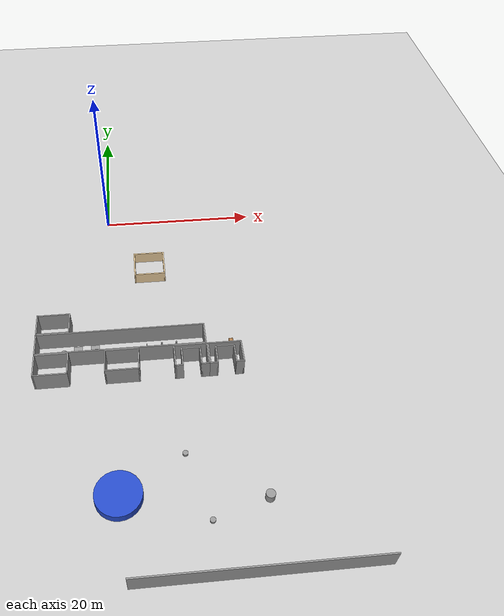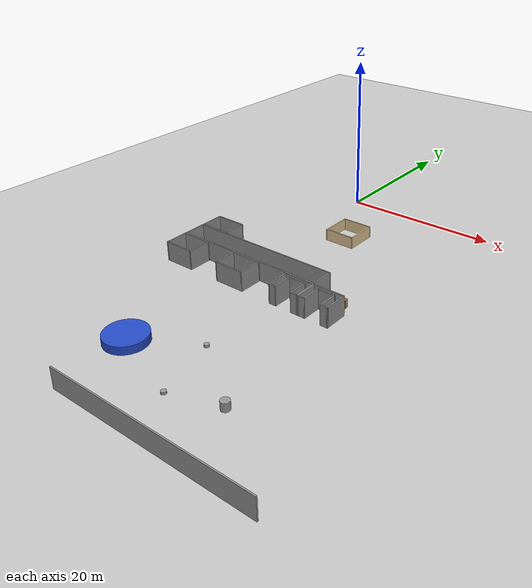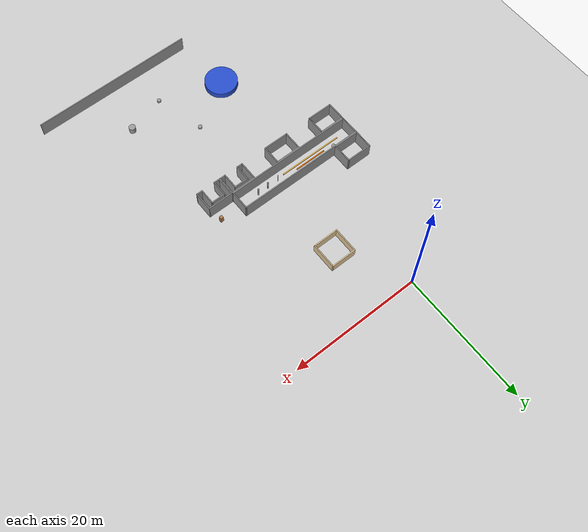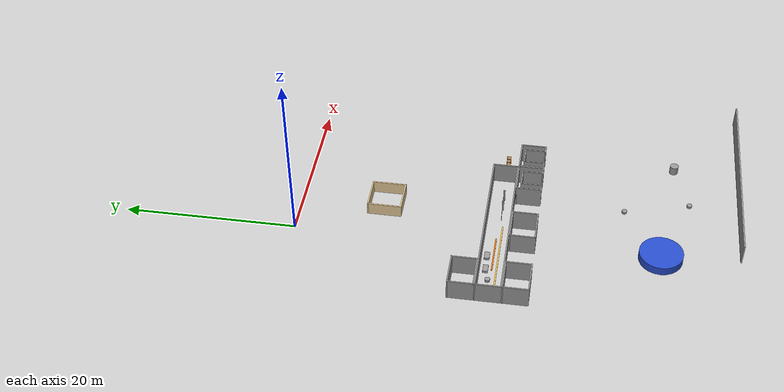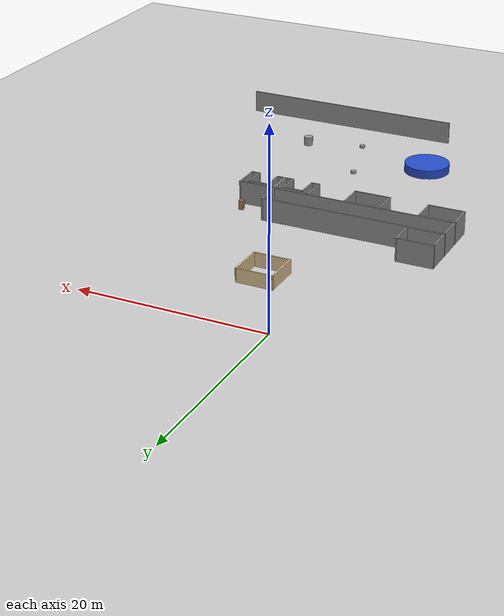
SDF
<sdf version="1.6">
 <world name="default">
  <model name="ground_plane">
   <static>1</static>
   <link name="link">
    <collision name="collision">
     <geometry><plane><normal>0 0 1</normal><size>105 105</size></plane></geometry>
     <surface>
      <contact><collide_bitmask>65535</collide_bitmask></contact>
      <friction><ode><mu>100</mu><mu2>50</mu2></ode></friction>
     </surface>
    </collision>
    <visual name="visual">
     <cast_shadows>0</cast_shadows>
     <geometry><plane><normal>0 0 1</normal><size>105 105</size></plane></geometry>
     <material>
      <script><uri>file://media/materials/scripts/gazebo.material</uri><name>Gazebo/Grey</name></script>
     </material>
    </visual>
   </link>
  </model>
  <model name="base3x20_2">
   <pose>1.5051 -23.232 0 0 -0 0</pose>
   <link name="Wall_16">
    <collision name="Wall_16_Collision">
     <geometry><box><size>3 0.15 2.5</size></box></geometry>
     <pose>0 0 1.25 0 -0 0</pose>
    </collision>
    <visual name="Wall_16_Visual">
     <pose>0 0 1.25 0 -0 0</pose>
     <geometry><box><size>3 0.15 2.5</size></box></geometry>
     <material>
      <script><uri>file://media/materials/scripts/gazebo.material</uri><name>Gazebo/Grey</name></script>
      <ambient>1 1 1 1</ambient>
     </material>
     <meta><layer>0</layer></meta>
    </visual>
    <pose>-9.925 -0 0 0 -0 -1.5708</pose>
   </link>
   <link name="Wall_17">
    <collision name="Wall_17_Collision">
     <geometry><box><size>20 0.15 2.5</size></box></geometry>
     <pose>0 0 1.25 0 -0 0</pose>
    </collision>
    <visual name="Wall_17_Visual">
     <pose>0 0 1.25 0 -0 0</pose>
     <geometry><box><size>20 0.15 2.5</size></box></geometry>
     <material>
      <script><uri>file://media/materials/scripts/gazebo.material</uri><name>Gazebo/Grey</name></script>
      <ambient>1 1 1 1</ambient>
     </material>
     <meta><layer>0</layer></meta>
    </visual>
    <pose>-0 -1.425 0 0 -0 0</pose>
   </link>
   <link name="Wall_18">
    <collision name="Wall_18_Collision">
     <geometry><box><size>3 0.15 2.5</size></box></geometry>
     <pose>0 0 1.25 0 -0 0</pose>
    </collision>
    <visual name="Wall_18_Visual">
     <pose>0 0 1.25 0 -0 0</pose>
     <geometry><box><size>3 0.15 2.5</size></box></geometry>
     <material>
      <script><uri>file://media/materials/scripts/gazebo.material</uri><name>Gazebo/Grey</name></script>
      <ambient>1 1 1 1</ambient>
     </material>
     <meta><layer>0</layer></meta>
    </visual>
    <pose>9.925 -0 0 0 -0 1.5708</pose>
   </link>
   <link name="Wall_19">
    <collision name="Wall_19_Collision">
     <geometry><box><size>20 0.15 2.5</size></box></geometry>
     <pose>0 0 1.25 0 -0 0</pose>
    </collision>
    <visual name="Wall_19_Visual">
     <pose>0 0 1.25 0 -0 0</pose>
     <geometry><box><size>20 0.15 2.5</size></box></geometry>
     <material>
      <script><uri>file://media/materials/scripts/gazebo.material</uri><name>Gazebo/Grey</name></script>
      <ambient>1 1 1 1</ambient>
     </material>
     <meta><layer>0</layer></meta>
    </visual>
    <pose>-0 1.425 0 0 -0 3.14159</pose>
   </link>
   <static>1</static>
  </model>
  <model name="unit_cylinder_2">
   <pose>15.9962 -43.1928 0.499981 0 -0 0</pose>
   <link name="link">
    <inertial>
     <mass>1</mass>
     <inertia><ixx>0.145833</ixx><ixy>0</ixy><ixz>0</ixz><iyy>0.145833</iyy><iyz>0</iyz><izz>0.125</izz></inertia>
    </inertial>
    <collision name="collision">
     <geometry><cylinder><radius>0.5</radius><length>1</length></cylinder></geometry>
    </collision>
    <visual name="visual">
     <geometry><cylinder><radius>0.5</radius><length>1</length></cylinder></geometry>
     <material>
      <script><name>Gazebo/Grey</name><uri>file://media/materials/scripts/gazebo.material</uri></script>
     </material>
    </visual>
   </link>
  </model>
  <model name="wall_25m_8">
   <pose>14.0268 -50.7126 0 0 -0 0</pose>
   <link name="Wall_28">
    <collision name="Wall_28_Collision">
     <geometry><box><size>25 0.15 2.5</size></box></geometry>
     <pose>0 0 1.25 0 -0 0</pose>
    </collision>
    <visual name="Wall_28_Visual">
     <pose>0 0 1.25 0 -0 0</pose>
     <geometry><box><size>25 0.15 2.5</size></box></geometry>
     <material>
      <script><uri>file://media/materials/scripts/gazebo.material</uri><name>Gazebo/Grey</name></script>
      <ambient>1 1 1 1</ambient>
     </material>
     <meta><layer>0</layer></meta>
    </visual>
   </link>
   <static>1</static>
  </model>
  <model name="bar10x0.15x0.15">
   <pose>-1.69484 -23.7489 0 0 -0 0</pose>
   <link name="Wall_5">
    <collision name="Wall_5_Collision">
     <geometry><box><size>10 0.15 0.15</size></box></geometry>
     <pose>0 0 0.075 0 -0 0</pose>
    </collision>
    <visual name="Wall_5_Visual">
     <pose>0 0 0.075 0 -0 0</pose>
     <geometry><box><size>10 0.15 0.15</size></box></geometry>
     <material>
      <script><uri>file://media/materials/scripts/gazebo.material</uri><name>Gazebo/Grey</name></script>
      <ambient>1 0.764706 0.305882 1</ambient>
     </material>
     <meta><layer>0</layer></meta>
    </visual>
   </link>
   <static>1</static>
  </model>
  <model name="bar5x0.15x0.15">
   <pose>-1.24356 -23.2103 0 0 -0 0</pose>
   <link name="Wall_12">
    <collision name="Wall_12_Collision">
     <geometry><box><size>5 0.15 0.15</size></box></geometry>
     <pose>0 0 0.075 0 -0 0</pose>
    </collision>
    <visual name="Wall_12_Visual">
     <pose>0 0 0.075 0 -0 0</pose>
     <geometry><box><size>5 0.15 0.15</size></box></geometry>
     <material>
      <script><uri>file://media/materials/scripts/gazebo.material</uri><name>Gazebo/Grey</name></script>
      <ambient>0.996078 0.47451 0.0196078 1</ambient>
     </material>
     <meta><layer>0</layer></meta>
    </visual>
   </link>
   <static>1</static>
  </model>
  <model name="cabinet">
   <static>1</static>
   <link name="cabinet_bottom_plate">
    <inertial>
     <pose>0 0 -1 0 -0 0</pose>
     <inertia><ixx>2.05</ixx><ixy>0</ixy><ixz>0</ixz><iyy>2.05</iyy><iyz>0</iyz><izz>2.05</izz></inertia>
     <mass>25</mass>
    </inertial>
    <collision name="cabinet_bottom_plate_geom">
     <pose>0 0 0.01 0 -0 0</pose>
     <geometry><box><size>0.45 0.45 0.02</size></box></geometry>
    </collision>
    <visual name="cabinet_bottom_plate_geom_visual">
     <pose>0 0 0.01 0 -0 0</pose>
     <geometry><box><size>0.45 0.45 0.02</size></box></geometry>
     <material>
      <script><uri>file://media/materials/scripts/gazebo.material</uri><name>Gazebo/Wood</name></script>
     </material>
    </visual>
    <collision name="cabinet_bottom_plate_geom_cabinet_back_plate">
     <pose>0.235 0 0.51 0 -0 0</pose>
     <geometry><box><size>0.02 0.45 1.02</size></box></geometry>
    </collision>
    <visual name="cabinet_bottom_plate_geom_cabinet_back_plate_visual">
     <pose>0.235 0 0.51 0 -0 0</pose>
     <geometry><box><size>0.02 0.45 1.02</size></box></geometry>
     <material>
      <script><uri>file://media/materials/scripts/gazebo.material</uri><name>Gazebo/Wood</name></script>
     </material>
    </visual>
    <collision name="cabinet_bottom_plate_geom_cabinet_left_plate">
     <pose>0 0.235 0.51 0 -0 0</pose>
     <geometry><box><size>0.45 0.02 1.02</size></box></geometry>
    </collision>
    <visual name="cabinet_bottom_plate_geom_cabinet_left_plate_visual">
     <pose>0 0.235 0.51 0 -0 0</pose>
     <geometry><box><size>0.45 0.02 1.02</size></box></geometry>
     <material>
      <script><uri>file://media/materials/scripts/gazebo.material</uri><name>Gazebo/Wood</name></script>
     </material>
    </visual>
    <collision name="cabinet_bottom_plate_geom_cabinet_middle_plate">
     <pose>0 0 0.51 0 -0 0</pose>
     <geometry><box><size>0.45 0.45 0.02</size></box></geometry>
    </collision>
    <visual name="cabinet_bottom_plate_geom_cabinet_middle_plate_visual">
     <pose>0 0 0.51 0 -0 0</pose>
     <geometry><box><size>0.45 0.45 0.02</size></box></geometry>
     <material>
      <script><uri>file://media/materials/scripts/gazebo.material</uri><name>Gazebo/Wood</name></script>
     </material>
    </visual>
    <collision name="cabinet_bottom_plate_geom_cabinet_right_plate">
     <pose>0 -0.235 0.51 0 -0 0</pose>
     <geometry><box><size>0.45 0.02 1.02</size></box></geometry>
    </collision>
    <visual name="cabinet_bottom_plate_geom_cabinet_right_plate_visual">
     <pose>0 -0.235 0.51 0 -0 0</pose>
     <geometry><box><size>0.45 0.02 1.02</size></box></geometry>
     <material>
      <script><uri>file://media/materials/scripts/gazebo.material</uri><name>Gazebo/Wood</name></script>
     </material>
    </visual>
    <collision name="cabinet_bottom_plate_geom_cabinet_top_plate">
     <pose>0 0 1.01 0 -0 0</pose>
     <geometry><box><size>0.45 0.45 0.02</size></box></geometry>
    </collision>
    <visual name="cabinet_bottom_plate_geom_cabinet_top_plate_visual">
     <pose>0 0 1.01 0 -0 0</pose>
     <geometry><box><size>0.45 0.45 0.02</size></box></geometry>
     <material>
      <script><uri>file://media/materials/scripts/gazebo.material</uri><name>Gazebo/Wood</name></script>
     </material>
    </visual>
   </link>
   <pose>14.6067 -23.3531 0 0 -0 0</pose>
  </model>
  <model name="unit_box_5mmx5mmx2m">
   <link name="link">
    <inertial>
     <mass>1</mass>
     <inertia>
      <ixx>0.166667</ixx>
      <ixy>0</ixy>
      <ixz>0</ixz>
      <iyy>0.166667</iyy>
      <iyz>0</iyz>
      <izz>0.166667</izz>
     </inertia>
    </inertial>
    <visual name="visual">
     <geometry><box><size>0.05 0.05 2</size></box></geometry>
     <material>
      <script><name>Gazebo/Grey</name><uri>file://media/materials/scripts/gazebo.material</uri></script>
      <shader type="vertex"><normal_map>__default__</normal_map></shader>
      <ambient>0.3 0.3 0.3 1</ambient>
      <diffuse>0.7 0.7 0.7 1</diffuse>
      <specular>0.01 0.01 0.01 1</specular>
      <emissive>0 0 0 1</emissive>
     </material>
    </visual>
    <collision name="collision">
     <geometry><box><size>1 1 1</size></box></geometry>
     <surface>
      <friction>
       <ode><mu>1</mu><mu2>1</mu2><fdir1>0 0 0</fdir1><slip1>0</slip1><slip2>0</slip2></ode>
       <torsional>
        <coefficient>1</coefficient>
        <patch_radius>0</patch_radius>
        <surface_radius>0</surface_radius>
        <use_patch_radius>1</use_patch_radius>
        <ode><slip>0</slip></ode>
       </torsional>
      </friction>
      <bounce><restitution_coefficient>0</restitution_coefficient><threshold>1e+06</threshold></bounce>
      <contact>
       <collide_without_contact>0</collide_without_contact>
       <collide_without_contact_bitmask>1</collide_without_contact_bitmask>
       <collide_bitmask>1</collide_bitmask>
       <ode>
        <soft_cfm>0</soft_cfm>
        <soft_erp>0.2</soft_erp>
        <kp>1e+13</kp>
        <kd>1</kd>
        <max_vel>0.01</max_vel>
        <min_depth>0</min_depth>
       </ode>
       <bullet>
        <split_impulse>1</split_impulse>
        <split_impulse_penetration_threshold>-0.01</split_impulse_penetration_threshold>
        <soft_cfm>0</soft_cfm>
        <soft_erp>0.2</soft_erp>
        <kp>1e+13</kp>
        <kd>1</kd>
       </bullet>
      </contact>
     </surface>
    </collision>
   </link>
   <static>0</static>
   <pose>4.52759 -23.4698 0.5 0 -0 0</pose>
  </model>
  <model name="unit_cylinder_r0.1_l2m">
   <link name="link">
    <inertial>
     <mass>1</mass>
     <inertia><ixx>0.145833</ixx><ixy>0</ixy><ixz>0</ixz><iyy>0.145833</iyy><iyz>0</iyz><izz>0.125</izz></inertia>
    </inertial>
    <visual name="visual">
     <geometry><cylinder><radius>0.1</radius><length>2</length></cylinder></geometry>
     <material>
      <script><name>Gazebo/Grey</name><uri>file://media/materials/scripts/gazebo.material</uri></script>
      <shader type="vertex"><normal_map>__default__</normal_map></shader>
      <ambient>0.3 0.3 0.3 1</ambient>
      <diffuse>0.7 0.7 0.7 1</diffuse>
      <specular>0.01 0.01 0.01 1</specular>
      <emissive>0 0 0 1</emissive>
     </material>
    </visual>
    <collision name="collision">
     <geometry><cylinder><radius>0.5</radius><length>1</length></cylinder></geometry>
     <surface>
      <friction>
       <ode><mu>1</mu><mu2>1</mu2><fdir1>0 0 0</fdir1><slip1>0</slip1><slip2>0</slip2></ode>
       <torsional>
        <coefficient>1</coefficient>
        <patch_radius>0</patch_radius>
        <surface_radius>0</surface_radius>
        <use_patch_radius>1</use_patch_radius>
        <ode><slip>0</slip></ode>
       </torsional>
      </friction>
      <bounce><restitution_coefficient>0</restitution_coefficient><threshold>1e+06</threshold></bounce>
      <contact>
       <collide_without_contact>0</collide_without_contact>
       <collide_without_contact_bitmask>1</collide_without_contact_bitmask>
       <collide_bitmask>1</collide_bitmask>
       <ode>
        <soft_cfm>0</soft_cfm>
        <soft_erp>0.2</soft_erp>
        <kp>1e+13</kp>
        <kd>1</kd>
        <max_vel>0.01</max_vel>
        <min_depth>0</min_depth>
       </ode>
       <bullet>
        <split_impulse>1</split_impulse>
        <split_impulse_penetration_threshold>-0.01</split_impulse_penetration_threshold>
        <soft_cfm>0</soft_cfm>
        <soft_erp>0.2</soft_erp>
        <kp>1e+13</kp>
        <kd>1</kd>
       </bullet>
      </contact>
     </surface>
    </collision>
   </link>
   <static>0</static>
   <pose>6.32754 -23.4492 0.499981 0 -0 0</pose>
  </model>
  <model name="unit_cylinder_r0.1_l2m_0">
   <link name="link">
    <inertial>
     <mass>1</mass>
     <inertia><ixx>0.145833</ixx><ixy>0</ixy><ixz>0</ixz><iyy>0.145833</iyy><iyz>0</iyz><izz>0.125</izz></inertia>
    </inertial>
    <visual name="visual">
     <geometry><cylinder><radius>0.1</radius><length>2</length></cylinder></geometry>
     <material>
      <script><name>Gazebo/Grey</name><uri>file://media/materials/scripts/gazebo.material</uri></script>
      <shader type="vertex"><normal_map>__default__</normal_map></shader>
      <ambient>0.3 0.3 0.3 1</ambient>
      <diffuse>0.7 0.7 0.7 1</diffuse>
      <specular>0.01 0.01 0.01 1</specular>
      <emissive>0 0 0 1</emissive>
     </material>
    </visual>
    <collision name="collision">
     <geometry><cylinder><radius>0.5</radius><length>1</length></cylinder></geometry>
     <surface>
      <friction>
       <ode><mu>1</mu><mu2>1</mu2><fdir1>0 0 0</fdir1><slip1>0</slip1><slip2>0</slip2></ode>
       <torsional>
        <coefficient>1</coefficient>
        <patch_radius>0</patch_radius>
        <surface_radius>0</surface_radius>
        <use_patch_radius>1</use_patch_radius>
        <ode><slip>0</slip></ode>
       </torsional>
      </friction>
      <bounce><restitution_coefficient>0</restitution_coefficient><threshold>1e+06</threshold></bounce>
      <contact>
       <collide_without_contact>0</collide_without_contact>
       <collide_without_contact_bitmask>1</collide_without_contact_bitmask>
       <collide_bitmask>1</collide_bitmask>
       <ode>
        <soft_cfm>0</soft_cfm>
        <soft_erp>0.2</soft_erp>
        <kp>1e+13</kp>
        <kd>1</kd>
        <max_vel>0.01</max_vel>
        <min_depth>0</min_depth>
       </ode>
       <bullet>
        <split_impulse>1</split_impulse>
        <split_impulse_penetration_threshold>-0.01</split_impulse_penetration_threshold>
        <soft_cfm>0</soft_cfm>
        <soft_erp>0.2</soft_erp>
        <kp>1e+13</kp>
        <kd>1</kd>
       </bullet>
      </contact>
     </surface>
    </collision>
   </link>
   <static>0</static>
   <pose>8.03781 -23.4299 0.499981 0 -0 0</pose>
  </model>
  <model name="unit_cylinder_r2.5_l1">
   <link name="link">
    <inertial>
     <mass>1</mass>
     <inertia><ixx>0.145833</ixx><ixy>0</ixy><ixz>0</ixz><iyy>0.145833</iyy><iyz>0</iyz><izz>0.125</izz></inertia>
    </inertial>
    <visual name="visual">
     <geometry><cylinder><radius>2.5</radius><length>1</length></cylinder></geometry>
     <material>
      <script><name>Gazebo/Blue</name><uri>file://media/materials/scripts/gazebo.material</uri></script>
      <shader type="vertex"><normal_map>__default__</normal_map></shader>
      <ambient>0.3 0.3 0.3 1</ambient>
      <diffuse>0.7 0.7 0.7 1</diffuse>
      <specular>0.01 0.01 0.01 1</specular>
      <emissive>0 0 0 1</emissive>
     </material>
    </visual>
    <collision name="collision">
     <geometry><cylinder><radius>2.5</radius><length>1</length></cylinder></geometry>
     <surface>
      <friction>
       <ode><mu>1</mu><mu2>1</mu2><fdir1>0 0 0</fdir1><slip1>0</slip1><slip2>0</slip2></ode>
       <torsional>
        <coefficient>1</coefficient>
        <patch_radius>0</patch_radius>
        <surface_radius>0</surface_radius>
        <use_patch_radius>1</use_patch_radius>
        <ode><slip>0</slip></ode>
       </torsional>
      </friction>
      <bounce><restitution_coefficient>0</restitution_coefficient><threshold>1e+06</threshold></bounce>
      <contact>
       <collide_without_contact>0</collide_without_contact>
       <collide_without_contact_bitmask>1</collide_without_contact_bitmask>
       <collide_bitmask>1</collide_bitmask>
       <ode>
        <soft_cfm>0</soft_cfm>
        <soft_erp>0.2</soft_erp>
        <kp>1e+13</kp>
        <kd>1</kd>
        <max_vel>0.01</max_vel>
        <min_depth>0</min_depth>
       </ode>
       <bullet>
        <split_impulse>1</split_impulse>
        <split_impulse_penetration_threshold>-0.01</split_impulse_penetration_threshold>
        <soft_cfm>0</soft_cfm>
        <soft_erp>0.2</soft_erp>
        <kp>1e+13</kp>
        <kd>1</kd>
       </bullet>
      </contact>
     </surface>
    </collision>
   </link>
   <static>0</static>
   <pose>0.855736 -41.7764 0.499981 0 -0 0</pose>
  </model>
  <model name="unit_cylinder30x30cm">
   <link name="link">
    <inertial>
     <mass>1</mass>
     <inertia><ixx>0.145833</ixx><ixy>0</ixy><ixz>0</ixz><iyy>0.145833</iyy><iyz>0</iyz><izz>0.125</izz></inertia>
    </inertial>
    <visual name="visual">
     <geometry><cylinder><radius>0.3</radius><length>0.3</length></cylinder></geometry>
     <material>
      <script><name>Gazebo/Grey</name><uri>file://media/materials/scripts/gazebo.material</uri></script>
      <shader type="vertex"><normal_map>__default__</normal_map></shader>
      <ambient>0.3 0.3 0.3 1</ambient>
      <diffuse>0.7 0.7 0.7 1</diffuse>
      <specular>0.01 0.01 0.01 1</specular>
      <emissive>0 0 0 1</emissive>
     </material>
    </visual>
    <collision name="collision">
     <geometry><cylinder><radius>0.3</radius><length>0.3</length></cylinder></geometry>
     <surface>
      <friction>
       <ode><mu>1</mu><mu2>1</mu2><fdir1>0 0 0</fdir1><slip1>0</slip1><slip2>0</slip2></ode>
       <torsional>
        <coefficient>1</coefficient>
        <patch_radius>0</patch_radius>
        <surface_radius>0</surface_radius>
        <use_patch_radius>1</use_patch_radius>
        <ode><slip>0</slip></ode>
       </torsional>
      </friction>
      <bounce><restitution_coefficient>0</restitution_coefficient><threshold>1e+06</threshold></bounce>
      <contact>
       <collide_without_contact>0</collide_without_contact>
       <collide_without_contact_bitmask>1</collide_without_contact_bitmask>
       <collide_bitmask>1</collide_bitmask>
       <ode>
        <soft_cfm>0</soft_cfm>
        <soft_erp>0.2</soft_erp>
        <kp>1e+13</kp>
        <kd>1</kd>
        <max_vel>0.01</max_vel>
        <min_depth>0</min_depth>
       </ode>
       <bullet>
        <split_impulse>1</split_impulse>
        <split_impulse_penetration_threshold>-0.01</split_impulse_penetration_threshold>
        <soft_cfm>0</soft_cfm>
        <soft_erp>0.2</soft_erp>
        <kp>1e+13</kp>
        <kd>1</kd>
       </bullet>
      </contact>
     </surface>
    </collision>
   </link>
   <static>0</static>
   <pose>10.0032 -45.0422 0.149981 -0 -0 -0</pose>
  </model>
  <model name="unit_cylinder30x30cm_0">
   <link name="link">
    <inertial>
     <mass>1</mass>
     <inertia><ixx>0.145833</ixx><ixy>0</ixy><ixz>0</ixz><iyy>0.145833</iyy><iyz>0</iyz><izz>0.125</izz></inertia>
    </inertial>
    <visual name="visual">
     <geometry><cylinder><radius>0.3</radius><length>0.3</length></cylinder></geometry>
     <material>
      <script><name>Gazebo/Grey</name><uri>file://media/materials/scripts/gazebo.material</uri></script>
      <shader type="vertex"><normal_map>__default__</normal_map></shader>
      <ambient>0.3 0.3 0.3 1</ambient>
      <diffuse>0.7 0.7 0.7 1</diffuse>
      <specular>0.01 0.01 0.01 1</specular>
      <emissive>0 0 0 1</emissive>
     </material>
    </visual>
    <collision name="collision">
     <geometry><cylinder><radius>0.3</radius><length>0.3</length></cylinder></geometry>
     <surface>
      <friction>
       <ode><mu>1</mu><mu2>1</mu2><fdir1>0 0 0</fdir1><slip1>0</slip1><slip2>0</slip2></ode>
       <torsional>
        <coefficient>1</coefficient>
        <patch_radius>0</patch_radius>
        <surface_radius>0</surface_radius>
        <use_patch_radius>1</use_patch_radius>
        <ode><slip>0</slip></ode>
       </torsional>
      </friction>
      <bounce><restitution_coefficient>0</restitution_coefficient><threshold>1e+06</threshold></bounce>
      <contact>
       <collide_without_contact>0</collide_without_contact>
       <collide_without_contact_bitmask>1</collide_without_contact_bitmask>
       <collide_bitmask>1</collide_bitmask>
       <ode>
        <soft_cfm>0</soft_cfm>
        <soft_erp>0.2</soft_erp>
        <kp>1e+13</kp>
        <kd>1</kd>
        <max_vel>0.01</max_vel>
        <min_depth>0</min_depth>
       </ode>
       <bullet>
        <split_impulse>1</split_impulse>
        <split_impulse_penetration_threshold>-0.01</split_impulse_penetration_threshold>
        <soft_cfm>0</soft_cfm>
        <soft_erp>0.2</soft_erp>
        <kp>1e+13</kp>
        <kd>1</kd>
       </bullet>
      </contact>
     </surface>
    </collision>
   </link>
   <static>0</static>
   <pose>7.92592 -37.5286 0.149981 -0 -0 -0</pose>
  </model>
  <model name="unit_cylinder30x30cm_1">
   <link name="link">
    <inertial>
     <mass>1</mass>
     <inertia><ixx>0.145833</ixx><ixy>0</ixy><ixz>0</ixz><iyy>0.145833</iyy><iyz>0</iyz><izz>0.125</izz></inertia>
    </inertial>
    <visual name="visual">
     <geometry><cylinder><radius>0.3</radius><length>0.3</length></cylinder></geometry>
     <material>
      <script><name>Gazebo/Grey</name><uri>file://media/materials/scripts/gazebo.material</uri></script>
      <shader type="vertex"><normal_map>__default__</normal_map></shader>
      <ambient>0.3 0.3 0.3 1</ambient>
      <diffuse>0.7 0.7 0.7 1</diffuse>
      <specular>0.01 0.01 0.01 1</specular>
      <emissive>0 0 0 1</emissive>
     </material>
    </visual>
    <collision name="collision">
     <geometry><cylinder><radius>0.3</radius><length>0.3</length></cylinder></geometry>
     <surface>
      <friction>
       <ode><mu>1</mu><mu2>1</mu2><fdir1>0 0 0</fdir1><slip1>0</slip1><slip2>0</slip2></ode>
       <torsional>
        <coefficient>1</coefficient>
        <patch_radius>0</patch_radius>
        <surface_radius>0</surface_radius>
        <use_patch_radius>1</use_patch_radius>
        <ode><slip>0</slip></ode>
       </torsional>
      </friction>
      <bounce><restitution_coefficient>0</restitution_coefficient><threshold>1e+06</threshold></bounce>
      <contact>
       <collide_without_contact>0</collide_without_contact>
       <collide_without_contact_bitmask>1</collide_without_contact_bitmask>
       <collide_bitmask>1</collide_bitmask>
       <ode>
        <soft_cfm>0</soft_cfm>
        <soft_erp>0.2</soft_erp>
        <kp>1e+13</kp>
        <kd>1</kd>
        <max_vel>0.01</max_vel>
        <min_depth>0</min_depth>
       </ode>
       <bullet>
        <split_impulse>1</split_impulse>
        <split_impulse_penetration_threshold>-0.01</split_impulse_penetration_threshold>
        <soft_cfm>0</soft_cfm>
        <soft_erp>0.2</soft_erp>
        <kp>1e+13</kp>
        <kd>1</kd>
       </bullet>
      </contact>
     </surface>
    </collision>
   </link>
   <static>0</static>
   <pose>-5.34818 -22.9136 0.149981 -0 -0 -0</pose>
  </model>
  <model name="unit_box_100x60x30cm_1">
   <link name="link">
    <inertial>
     <mass>1</mass>
     <inertia>
      <ixx>0.166667</ixx>
      <ixy>0</ixy>
      <ixz>0</ixz>
      <iyy>0.166667</iyy>
      <iyz>0</iyz>
      <izz>0.166667</izz>
     </inertia>
    </inertial>
    <visual name="visual">
     <geometry><box><size>1 0.6 0.3</size></box></geometry>
     <material>
      <script><name>Gazebo/Grey</name><uri>file://media/materials/scripts/gazebo.material</uri></script>
      <shader type="vertex"><normal_map>__default__</normal_map></shader>
      <ambient>0.3 0.3 0.3 1</ambient>
      <diffuse>0.7 0.7 0.7 1</diffuse>
      <specular>0.01 0.01 0.01 1</specular>
      <emissive>0 0 0 1</emissive>
     </material>
    </visual>
    <collision name="collision">
     <geometry><box><size>1 0.6 0.3</size></box></geometry>
     <surface>
      <friction>
       <ode><mu>1</mu><mu2>1</mu2><fdir1>0 0 0</fdir1><slip1>0</slip1><slip2>0</slip2></ode>
       <torsional>
        <coefficient>1</coefficient>
        <patch_radius>0</patch_radius>
        <surface_radius>0</surface_radius>
        <use_patch_radius>1</use_patch_radius>
        <ode><slip>0</slip></ode>
       </torsional>
      </friction>
      <bounce><restitution_coefficient>0</restitution_coefficient><threshold>1e+06</threshold></bounce>
      <contact>
       <collide_without_contact>0</collide_without_contact>
       <collide_without_contact_bitmask>1</collide_without_contact_bitmask>
       <collide_bitmask>1</collide_bitmask>
       <ode>
        <soft_cfm>0</soft_cfm>
        <soft_erp>0.2</soft_erp>
        <kp>1e+13</kp>
        <kd>1</kd>
        <max_vel>0.01</max_vel>
        <min_depth>0</min_depth>
       </ode>
       <bullet>
        <split_impulse>1</split_impulse>
        <split_impulse_penetration_threshold>-0.01</split_impulse_penetration_threshold>
        <soft_cfm>0</soft_cfm>
        <soft_erp>0.2</soft_erp>
        <kp>1e+13</kp>
        <kd>1</kd>
       </bullet>
      </contact>
     </surface>
    </collision>
   </link>
   <static>0</static>
   <pose>-3.68716 -22.5271 0.15 0 -0 0</pose>
  </model>
  <model name="unit_box_100x60x30cm_2">
   <link name="link">
    <inertial>
     <mass>1</mass>
     <inertia>
      <ixx>0.166667</ixx>
      <ixy>0</ixy>
      <ixz>0</ixz>
      <iyy>0.166667</iyy>
      <iyz>0</iyz>
      <izz>0.166667</izz>
     </inertia>
    </inertial>
    <visual name="visual">
     <geometry><box><size>1 0.6 0.3</size></box></geometry>
     <material>
      <script><name>Gazebo/Grey</name><uri>file://media/materials/scripts/gazebo.material</uri></script>
      <shader type="vertex"><normal_map>__default__</normal_map></shader>
      <ambient>0.3 0.3 0.3 1</ambient>
      <diffuse>0.7 0.7 0.7 1</diffuse>
      <specular>0.01 0.01 0.01 1</specular>
      <emissive>0 0 0 1</emissive>
     </material>
    </visual>
    <collision name="collision">
     <geometry><box><size>1 0.6 0.3</size></box></geometry>
     <surface>
      <friction>
       <ode><mu>1</mu><mu2>1</mu2><fdir1>0 0 0</fdir1><slip1>0</slip1><slip2>0</slip2></ode>
       <torsional>
        <coefficient>1</coefficient>
        <patch_radius>0</patch_radius>
        <surface_radius>0</surface_radius>
        <use_patch_radius>1</use_patch_radius>
        <ode><slip>0</slip></ode>
       </torsional>
      </friction>
      <bounce><restitution_coefficient>0</restitution_coefficient><threshold>1e+06</threshold></bounce>
      <contact>
       <collide_without_contact>0</collide_without_contact>
       <collide_without_contact_bitmask>1</collide_without_contact_bitmask>
       <collide_bitmask>1</collide_bitmask>
       <ode>
        <soft_cfm>0</soft_cfm>
        <soft_erp>0.2</soft_erp>
        <kp>1e+13</kp>
        <kd>1</kd>
        <max_vel>0.01</max_vel>
        <min_depth>0</min_depth>
       </ode>
       <bullet>
        <split_impulse>1</split_impulse>
        <split_impulse_penetration_threshold>-0.01</split_impulse_penetration_threshold>
        <soft_cfm>0</soft_cfm>
        <soft_erp>0.2</soft_erp>
        <kp>1e+13</kp>
        <kd>1</kd>
       </bullet>
      </contact>
     </surface>
    </collision>
   </link>
   <static>0</static>
   <pose>-1.65474 -22.4797 0.15 0 -0 0</pose>
  </model>
  <model name="box4x4x1.5_2">
   <pose>5.45303 -9.87303 0 0 -0 0</pose>
   <link name="Wall_5">
    <collision name="Wall_5_Collision">
     <geometry><box><size>4 0.15 1.5</size></box></geometry>
     <pose>0 0 0.75 0 -0 0</pose>
    </collision>
    <visual name="Wall_5_Visual">
     <pose>0 0 0.75 0 -0 0</pose>
     <geometry><box><size>4 0.15 1.5</size></box></geometry>
     <material>
      <script><uri>file://media/materials/scripts/gazebo.material</uri><name>Gazebo/Grey</name></script>
      <ambient>0.921569 0.807843 0.615686 1</ambient>
     </material>
     <meta><layer>0</layer></meta>
    </visual>
    <pose>-1.925 -0 0 0 -0 -1.5708</pose>
   </link>
   <link name="Wall_6">
    <collision name="Wall_6_Collision">
     <geometry><box><size>4 0.15 1.5</size></box></geometry>
     <pose>0 0 0.75 0 -0 0</pose>
    </collision>
    <visual name="Wall_6_Visual">
     <pose>0 0 0.75 0 -0 0</pose>
     <geometry><box><size>4 0.15 1.5</size></box></geometry>
     <material>
      <script><uri>file://media/materials/scripts/gazebo.material</uri><name>Gazebo/Grey</name></script>
      <ambient>0.921569 0.807843 0.615686 1</ambient>
     </material>
     <meta><layer>0</layer></meta>
    </visual>
    <pose>0 -1.925 0 0 -0 0</pose>
   </link>
   <link name="Wall_7">
    <collision name="Wall_7_Collision">
     <geometry><box><size>4 0.15 1.5</size></box></geometry>
     <pose>0 0 0.75 0 -0 0</pose>
    </collision>
    <visual name="Wall_7_Visual">
     <pose>0 0 0.75 0 -0 0</pose>
     <geometry><box><size>4 0.15 1.5</size></box></geometry>
     <material>
      <script><uri>file://media/materials/scripts/gazebo.material</uri><name>Gazebo/Grey</name></script>
      <ambient>0.921569 0.807843 0.615686 1</ambient>
     </material>
     <meta><layer>0</layer></meta>
    </visual>
    <pose>1.925 -0 0 0 -0 1.5708</pose>
   </link>
   <link name="Wall_8">
    <collision name="Wall_8_Collision">
     <geometry><box><size>4 0.15 1.5</size></box></geometry>
     <pose>0 0 0.75 0 -0 0</pose>
    </collision>
    <visual name="Wall_8_Visual">
     <pose>0 0 0.75 0 -0 0</pose>
     <geometry><box><size>4 0.15 1.5</size></box></geometry>
     <material>
      <script><uri>file://media/materials/scripts/gazebo.material</uri><name>Gazebo/Grey</name></script>
      <ambient>0.921569 0.807843 0.615686 1</ambient>
     </material>
     <meta><layer>0</layer></meta>
    </visual>
    <pose>0 1.925 0 0 -0 3.14159</pose>
   </link>
   <static>1</static>
  </model>
  <model name="base3x4_47">
   <pose>-6.49308 -20.2372 0 0 -0 0</pose>
   <link name="Wall_18">
    <collision name="Wall_18_Collision">
     <geometry><box><size>3 0.15 2.5</size></box></geometry>
     <pose>0 0 1.25 0 -0 0</pose>
    </collision>
    <visual name="Wall_18_Visual">
     <pose>0 0 1.25 0 -0 0</pose>
     <geometry><box><size>3 0.15 2.5</size></box></geometry>
     <material>
      <script><uri>file://media/materials/scripts/gazebo.material</uri><name>Gazebo/Grey</name></script>
      <ambient>1 1 1 1</ambient>
     </material>
     <meta><layer>0</layer></meta>
    </visual>
    <pose>-1.925 -0 0 0 -0 -1.5708</pose>
   </link>
   <link name="Wall_19">
    <collision name="Wall_19_Collision">
     <geometry><box><size>4 0.15 2.5</size></box></geometry>
     <pose>0 0 1.25 0 -0 0</pose>
    </collision>
    <visual name="Wall_19_Visual">
     <pose>0 0 1.25 0 -0 0</pose>
     <geometry><box><size>4 0.15 2.5</size></box></geometry>
     <material>
      <script><uri>file://media/materials/scripts/gazebo.material</uri><name>Gazebo/Grey</name></script>
      <ambient>1 1 1 1</ambient>
     </material>
     <meta><layer>0</layer></meta>
    </visual>
    <pose>-0 -1.425 0 0 -0 0</pose>
   </link>
   <link name="Wall_20">
    <collision name="Wall_20_Collision">
     <geometry><box><size>3 0.15 2.5</size></box></geometry>
     <pose>0 0 1.25 0 -0 0</pose>
    </collision>
    <visual name="Wall_20_Visual">
     <pose>0 0 1.25 0 -0 0</pose>
     <geometry><box><size>3 0.15 2.5</size></box></geometry>
     <material>
      <script><uri>file://media/materials/scripts/gazebo.material</uri><name>Gazebo/Grey</name></script>
      <ambient>1 1 1 1</ambient>
     </material>
     <meta><layer>0</layer></meta>
    </visual>
    <pose>1.925 -0 0 0 -0 1.5708</pose>
   </link>
   <link name="Wall_21">
    <collision name="Wall_21_Collision">
     <geometry><box><size>4 0.15 2.5</size></box></geometry>
     <pose>0 0 1.25 0 -0 0</pose>
    </collision>
    <visual name="Wall_21_Visual">
     <pose>0 0 1.25 0 -0 0</pose>
     <geometry><box><size>4 0.15 2.5</size></box></geometry>
     <material>
      <script><uri>file://media/materials/scripts/gazebo.material</uri><name>Gazebo/Grey</name></script>
      <ambient>1 1 1 1</ambient>
     </material>
     <meta><layer>0</layer></meta>
    </visual>
    <pose>-0 1.425 0 0 -0 3.14159</pose>
   </link>
   <static>1</static>
  </model>
  <model name="base3x4_27">
   <pose>1.59388 -26.2311 0 0 -0 0</pose>
   <link name="Wall_18">
    <collision name="Wall_18_Collision">
     <geometry><box><size>3 0.15 2.5</size></box></geometry>
     <pose>0 0 1.25 0 -0 0</pose>
    </collision>
    <visual name="Wall_18_Visual">
     <pose>0 0 1.25 0 -0 0</pose>
     <geometry><box><size>3 0.15 2.5</size></box></geometry>
     <material>
      <script><uri>file://media/materials/scripts/gazebo.material</uri><name>Gazebo/Grey</name></script>
      <ambient>1 1 1 1</ambient>
     </material>
     <meta><layer>0</layer></meta>
    </visual>
    <pose>-1.925 -0 0 0 -0 -1.5708</pose>
   </link>
   <link name="Wall_19">
    <collision name="Wall_19_Collision">
     <geometry><box><size>4 0.15 2.5</size></box></geometry>
     <pose>0 0 1.25 0 -0 0</pose>
    </collision>
    <visual name="Wall_19_Visual">
     <pose>0 0 1.25 0 -0 0</pose>
     <geometry><box><size>4 0.15 2.5</size></box></geometry>
     <material>
      <script><uri>file://media/materials/scripts/gazebo.material</uri><name>Gazebo/Grey</name></script>
      <ambient>1 1 1 1</ambient>
     </material>
     <meta><layer>0</layer></meta>
    </visual>
    <pose>-0 -1.425 0 0 -0 0</pose>
   </link>
   <link name="Wall_20">
    <collision name="Wall_20_Collision">
     <geometry><box><size>3 0.15 2.5</size></box></geometry>
     <pose>0 0 1.25 0 -0 0</pose>
    </collision>
    <visual name="Wall_20_Visual">
     <pose>0 0 1.25 0 -0 0</pose>
     <geometry><box><size>3 0.15 2.5</size></box></geometry>
     <material>
      <script><uri>file://media/materials/scripts/gazebo.material</uri><name>Gazebo/Grey</name></script>
      <ambient>1 1 1 1</ambient>
     </material>
     <meta><layer>0</layer></meta>
    </visual>
    <pose>1.925 -0 0 0 -0 1.5708</pose>
   </link>
   <link name="Wall_21">
    <collision name="Wall_21_Collision">
     <geometry><box><size>4 0.15 2.5</size></box></geometry>
     <pose>0 0 1.25 0 -0 0</pose>
    </collision>
    <visual name="Wall_21_Visual">
     <pose>0 0 1.25 0 -0 0</pose>
     <geometry><box><size>4 0.15 2.5</size></box></geometry>
     <material>
      <script><uri>file://media/materials/scripts/gazebo.material</uri><name>Gazebo/Grey</name></script>
      <ambient>1 1 1 1</ambient>
     </material>
     <meta><layer>0</layer></meta>
    </visual>
    <pose>-0 1.425 0 0 -0 3.14159</pose>
   </link>
   <static>1</static>
  </model>
  <model name="base3x4_41">
   <pose>-6.49253 -26.2298 0 0 -0 0</pose>
   <link name="Wall_18">
    <collision name="Wall_18_Collision">
     <geometry><box><size>3 0.15 2.5</size></box></geometry>
     <pose>0 0 1.25 0 -0 0</pose>
    </collision>
    <visual name="Wall_18_Visual">
     <pose>0 0 1.25 0 -0 0</pose>
     <geometry><box><size>3 0.15 2.5</size></box></geometry>
     <material>
      <script><uri>file://media/materials/scripts/gazebo.material</uri><name>Gazebo/Grey</name></script>
      <ambient>1 1 1 1</ambient>
     </material>
     <meta><layer>0</layer></meta>
    </visual>
    <pose>-1.925 -0 0 0 -0 -1.5708</pose>
   </link>
   <link name="Wall_19">
    <collision name="Wall_19_Collision">
     <geometry><box><size>4 0.15 2.5</size></box></geometry>
     <pose>0 0 1.25 0 -0 0</pose>
    </collision>
    <visual name="Wall_19_Visual">
     <pose>0 0 1.25 0 -0 0</pose>
     <geometry><box><size>4 0.15 2.5</size></box></geometry>
     <material>
      <script><uri>file://media/materials/scripts/gazebo.material</uri><name>Gazebo/Grey</name></script>
      <ambient>1 1 1 1</ambient>
     </material>
     <meta><layer>0</layer></meta>
    </visual>
    <pose>-0 -1.425 0 0 -0 0</pose>
   </link>
   <link name="Wall_20">
    <collision name="Wall_20_Collision">
     <geometry><box><size>3 0.15 2.5</size></box></geometry>
     <pose>0 0 1.25 0 -0 0</pose>
    </collision>
    <visual name="Wall_20_Visual">
     <pose>0 0 1.25 0 -0 0</pose>
     <geometry><box><size>3 0.15 2.5</size></box></geometry>
     <material>
      <script><uri>file://media/materials/scripts/gazebo.material</uri><name>Gazebo/Grey</name></script>
      <ambient>1 1 1 1</ambient>
     </material>
     <meta><layer>0</layer></meta>
    </visual>
    <pose>1.925 -0 0 0 -0 1.5708</pose>
   </link>
   <link name="Wall_21">
    <collision name="Wall_21_Collision">
     <geometry><box><size>4 0.15 2.5</size></box></geometry>
     <pose>0 0 1.25 0 -0 0</pose>
    </collision>
    <visual name="Wall_21_Visual">
     <pose>0 0 1.25 0 -0 0</pose>
     <geometry><box><size>4 0.15 2.5</size></box></geometry>
     <material>
      <script><uri>file://media/materials/scripts/gazebo.material</uri><name>Gazebo/Grey</name></script>
      <ambient>1 1 1 1</ambient>
     </material>
     <meta><layer>0</layer></meta>
    </visual>
    <pose>-0 1.425 0 0 -0 3.14159</pose>
   </link>
   <static>1</static>
  </model>
  <model name="box_u_v4X3X2.5_3">
   <pose>9.58338 -26.2266 0 0 -0 0</pose>
   <link name="Wall_30">
    <collision name="Wall_30_Collision">
     <geometry><box><size>3 0.15 2.5</size></box></geometry>
     <pose>0 0 1.25 0 -0 0</pose>
    </collision>
    <visual name="Wall_30_Visual">
     <pose>0 0 1.25 0 -0 0</pose>
     <geometry><box><size>3 0.15 2.5</size></box></geometry>
     <material>
      <script><uri>file://media/materials/scripts/gazebo.material</uri><name>Gazebo/Grey</name></script>
      <ambient>1 1 1 1</ambient>
     </material>
     <meta><layer>0</layer></meta>
    </visual>
    <pose>-1.925 0 0 0 -0 -1.5708</pose>
   </link>
   <link name="Wall_32">
    <collision name="Wall_32_Collision">
     <geometry><box><size>4 0.15 2.5</size></box></geometry>
     <pose>0 0 1.25 0 -0 0</pose>
    </collision>
    <visual name="Wall_32_Visual">
     <pose>0 0 1.25 0 -0 0</pose>
     <geometry><box><size>4 0.15 2.5</size></box></geometry>
     <material>
      <script><uri>file://media/materials/scripts/gazebo.material</uri><name>Gazebo/Grey</name></script>
      <ambient>1 1 1 1</ambient>
     </material>
     <meta><layer>0</layer></meta>
    </visual>
    <pose>0 1.425 0 0 -0 0</pose>
   </link>
   <link name="Wall_33">
    <collision name="Wall_33_Collision">
     <geometry><box><size>3 0.15 2.5</size></box></geometry>
     <pose>0 0 1.25 0 -0 0</pose>
    </collision>
    <visual name="Wall_33_Visual">
     <pose>0 0 1.25 0 -0 0</pose>
     <geometry><box><size>3 0.15 2.5</size></box></geometry>
     <material>
      <script><uri>file://media/materials/scripts/gazebo.material</uri><name>Gazebo/Grey</name></script>
      <ambient>1 1 1 1</ambient>
     </material>
     <meta><layer>0</layer></meta>
    </visual>
    <pose>1.925 0 0 0 -0 -1.5708</pose>
   </link>
   <link name="Wall_34">
    <collision name="Wall_34_Collision">
     <geometry><box><size>1 0.15 2.5</size></box></geometry>
     <pose>0 0 1.25 0 -0 0</pose>
    </collision>
    <visual name="Wall_34_Visual">
     <pose>0 0 1.25 0 -0 0</pose>
     <geometry><box><size>1 0.15 2.5</size></box></geometry>
     <material>
      <script><uri>file://media/materials/scripts/gazebo.material</uri><name>Gazebo/Grey</name></script>
      <ambient>1 1 1 1</ambient>
     </material>
     <meta><layer>0</layer></meta>
    </visual>
    <pose>1.5 -1.425 0 0 -0 3.14159</pose>
   </link>
   <link name="Wall_35">
    <collision name="Wall_35_Collision">
     <geometry><box><size>2.5 0.15 2.5</size></box></geometry>
     <pose>0 0 1.25 0 -0 0</pose>
    </collision>
    <visual name="Wall_35_Visual">
     <pose>0 0 1.25 0 -0 0</pose>
     <geometry><box><size>2.5 0.15 2.5</size></box></geometry>
     <material>
      <script><uri>file://media/materials/scripts/gazebo.material</uri><name>Gazebo/Grey</name></script>
      <ambient>1 1 1 1</ambient>
     </material>
     <meta><layer>0</layer></meta>
    </visual>
    <pose>1.075 -0.25 0 0 -0 1.5708</pose>
   </link>
   <link name="Wall_37">
    <collision name="Wall_37_Collision">
     <geometry><box><size>1 0.15 2.5</size></box></geometry>
     <pose>0 0 1.25 0 -0 0</pose>
    </collision>
    <visual name="Wall_37_Visual">
     <pose>0 0 1.25 0 -0 0</pose>
     <geometry><box><size>1 0.15 2.5</size></box></geometry>
     <material>
      <script><uri>file://media/materials/scripts/gazebo.material</uri><name>Gazebo/Grey</name></script>
      <ambient>1 1 1 1</ambient>
     </material>
     <meta><layer>0</layer></meta>
    </visual>
    <pose>-1.5 -1.425 0 0 -0 0</pose>
   </link>
   <link name="Wall_38">
    <collision name="Wall_38_Collision">
     <geometry><box><size>2.5 0.15 2.5</size></box></geometry>
     <pose>0 0 1.25 0 -0 0</pose>
    </collision>
    <visual name="Wall_38_Visual">
     <pose>0 0 1.25 0 -0 0</pose>
     <geometry><box><size>2.5 0.15 2.5</size></box></geometry>
     <material>
      <script><uri>file://media/materials/scripts/gazebo.material</uri><name>Gazebo/Grey</name></script>
      <ambient>1 1 1 1</ambient>
     </material>
     <meta><layer>0</layer></meta>
    </visual>
    <pose>-1.075 -0.25 0 0 -0 1.5708</pose>
   </link>
   <link name="Wall_39">
    <collision name="Wall_39_Collision">
     <geometry><box><size>2.3 0.15 2.5</size></box></geometry>
     <pose>0 0 1.25 0 -0 0</pose>
    </collision>
    <visual name="Wall_39_Visual">
     <pose>0 0 1.25 0 -0 0</pose>
     <geometry><box><size>2.3 0.15 2.5</size></box></geometry>
     <material>
      <script><uri>file://media/materials/scripts/gazebo.material</uri><name>Gazebo/Grey</name></script>
      <ambient>1 1 1 1</ambient>
     </material>
     <meta><layer>0</layer></meta>
    </visual>
    <pose>0 0.925 0 0 -0 0</pose>
   </link>
   <static>1</static>
  </model>
  <model name="box_u_v4X3X2.5_4">
   <pose>13.5763 -26.2265 0 0 -0 0</pose>
   <link name="Wall_30">
    <collision name="Wall_30_Collision">
     <geometry><box><size>3 0.15 2.5</size></box></geometry>
     <pose>0 0 1.25 0 -0 0</pose>
    </collision>
    <visual name="Wall_30_Visual">
     <pose>0 0 1.25 0 -0 0</pose>
     <geometry><box><size>3 0.15 2.5</size></box></geometry>
     <material>
      <script><uri>file://media/materials/scripts/gazebo.material</uri><name>Gazebo/Grey</name></script>
      <ambient>1 1 1 1</ambient>
     </material>
     <meta><layer>0</layer></meta>
    </visual>
    <pose>-1.925 0 0 0 -0 -1.5708</pose>
   </link>
   <link name="Wall_32">
    <collision name="Wall_32_Collision">
     <geometry><box><size>4 0.15 2.5</size></box></geometry>
     <pose>0 0 1.25 0 -0 0</pose>
    </collision>
    <visual name="Wall_32_Visual">
     <pose>0 0 1.25 0 -0 0</pose>
     <geometry><box><size>4 0.15 2.5</size></box></geometry>
     <material>
      <script><uri>file://media/materials/scripts/gazebo.material</uri><name>Gazebo/Grey</name></script>
      <ambient>1 1 1 1</ambient>
     </material>
     <meta><layer>0</layer></meta>
    </visual>
    <pose>0 1.425 0 0 -0 0</pose>
   </link>
   <link name="Wall_33">
    <collision name="Wall_33_Collision">
     <geometry><box><size>3 0.15 2.5</size></box></geometry>
     <pose>0 0 1.25 0 -0 0</pose>
    </collision>
    <visual name="Wall_33_Visual">
     <pose>0 0 1.25 0 -0 0</pose>
     <geometry><box><size>3 0.15 2.5</size></box></geometry>
     <material>
      <script><uri>file://media/materials/scripts/gazebo.material</uri><name>Gazebo/Grey</name></script>
      <ambient>1 1 1 1</ambient>
     </material>
     <meta><layer>0</layer></meta>
    </visual>
    <pose>1.925 0 0 0 -0 -1.5708</pose>
   </link>
   <link name="Wall_34">
    <collision name="Wall_34_Collision">
     <geometry><box><size>1 0.15 2.5</size></box></geometry>
     <pose>0 0 1.25 0 -0 0</pose>
    </collision>
    <visual name="Wall_34_Visual">
     <pose>0 0 1.25 0 -0 0</pose>
     <geometry><box><size>1 0.15 2.5</size></box></geometry>
     <material>
      <script><uri>file://media/materials/scripts/gazebo.material</uri><name>Gazebo/Grey</name></script>
      <ambient>1 1 1 1</ambient>
     </material>
     <meta><layer>0</layer></meta>
    </visual>
    <pose>1.5 -1.425 0 0 -0 3.14159</pose>
   </link>
   <link name="Wall_35">
    <collision name="Wall_35_Collision">
     <geometry><box><size>2.5 0.15 2.5</size></box></geometry>
     <pose>0 0 1.25 0 -0 0</pose>
    </collision>
    <visual name="Wall_35_Visual">
     <pose>0 0 1.25 0 -0 0</pose>
     <geometry><box><size>2.5 0.15 2.5</size></box></geometry>
     <material>
      <script><uri>file://media/materials/scripts/gazebo.material</uri><name>Gazebo/Grey</name></script>
      <ambient>1 1 1 1</ambient>
     </material>
     <meta><layer>0</layer></meta>
    </visual>
    <pose>1.075 -0.25 0 0 -0 1.5708</pose>
   </link>
   <link name="Wall_37">
    <collision name="Wall_37_Collision">
     <geometry><box><size>1 0.15 2.5</size></box></geometry>
     <pose>0 0 1.25 0 -0 0</pose>
    </collision>
    <visual name="Wall_37_Visual">
     <pose>0 0 1.25 0 -0 0</pose>
     <geometry><box><size>1 0.15 2.5</size></box></geometry>
     <material>
      <script><uri>file://media/materials/scripts/gazebo.material</uri><name>Gazebo/Grey</name></script>
      <ambient>1 1 1 1</ambient>
     </material>
     <meta><layer>0</layer></meta>
    </visual>
    <pose>-1.5 -1.425 0 0 -0 0</pose>
   </link>
   <link name="Wall_38">
    <collision name="Wall_38_Collision">
     <geometry><box><size>2.5 0.15 2.5</size></box></geometry>
     <pose>0 0 1.25 0 -0 0</pose>
    </collision>
    <visual name="Wall_38_Visual">
     <pose>0 0 1.25 0 -0 0</pose>
     <geometry><box><size>2.5 0.15 2.5</size></box></geometry>
     <material>
      <script><uri>file://media/materials/scripts/gazebo.material</uri><name>Gazebo/Grey</name></script>
      <ambient>1 1 1 1</ambient>
     </material>
     <meta><layer>0</layer></meta>
    </visual>
    <pose>-1.075 -0.25 0 0 -0 1.5708</pose>
   </link>
   <link name="Wall_39">
    <collision name="Wall_39_Collision">
     <geometry><box><size>2.3 0.15 2.5</size></box></geometry>
     <pose>0 0 1.25 0 -0 0</pose>
    </collision>
    <visual name="Wall_39_Visual">
     <pose>0 0 1.25 0 -0 0</pose>
     <geometry><box><size>2.3 0.15 2.5</size></box></geometry>
     <material>
      <script><uri>file://media/materials/scripts/gazebo.material</uri><name>Gazebo/Grey</name></script>
      <ambient>1 1 1 1</ambient>
     </material>
     <meta><layer>0</layer></meta>
    </visual>
    <pose>0 0.925 0 0 -0 0</pose>
   </link>
   <static>1</static>
  </model>
 </world>
</sdf>
